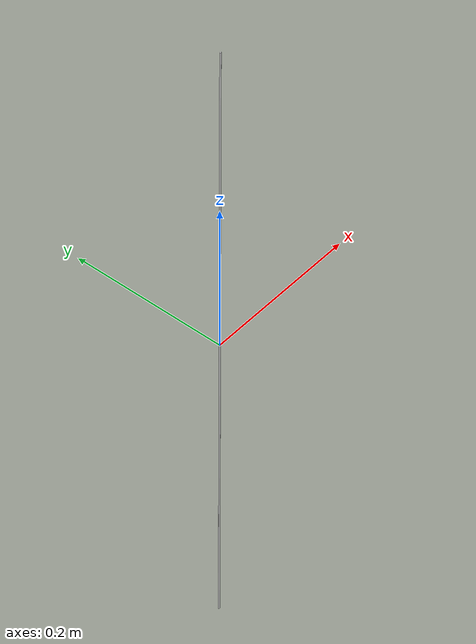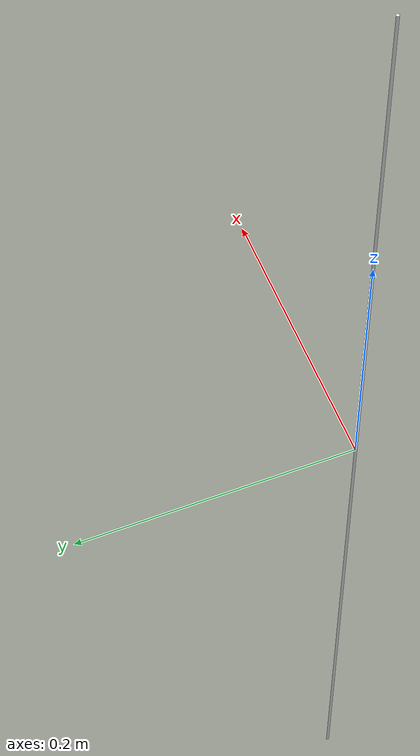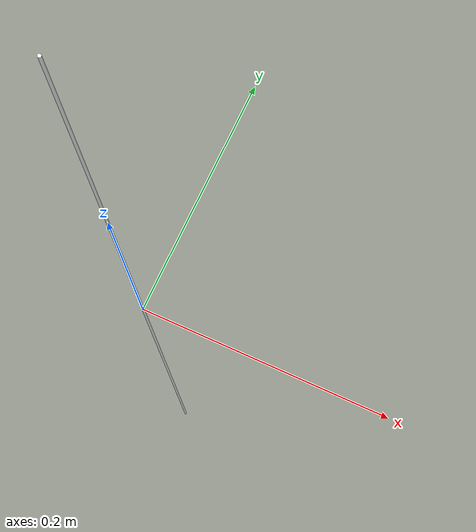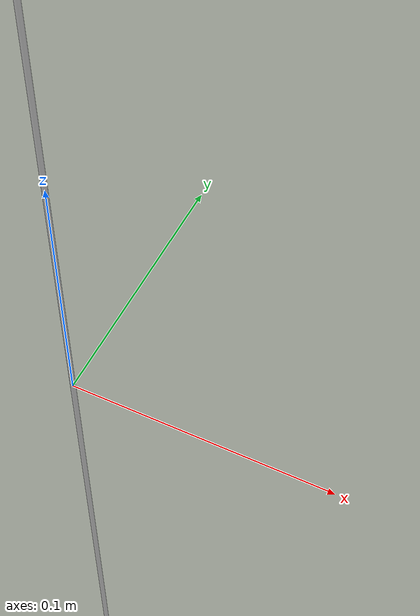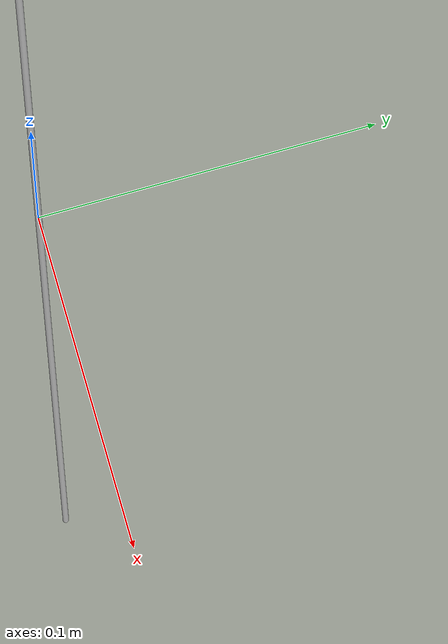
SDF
<?xml version='1.0'?>
<sdf version='1.6'>
  <enable_lockstep>false</enable_lockstep>
  <model name='pendulum'>
    <static>false</static>
    <link name='base_link'>
      <pose>0 0 0 0 0 0</pose>
      <inertial>
        <mass>0.01</mass>
        <inertia>
          <ixx>0.00060208</ixx>
          <ixy>0</ixy>
          <ixz>0</ixz>
          <iyy>0.00060208</iyy>
          <iyz>0</iyz>
          <izz>0.000000005</izz>
        </inertia>
      </inertial>
      <visual name='base_visual'>
        <geometry>
          <cylinder>
            <radius>0.001</radius>
            <length>0.85</length>
          </cylinder>
        </geometry>
        <material>
          <script>
            <name>Gazebo/White</name>
            <uri>file://media/materials/scripts/gazebo.material</uri>
          </script>
        </material>
      </visual>
      <gravity>1</gravity>
    </link>
  </model>
</sdf>
